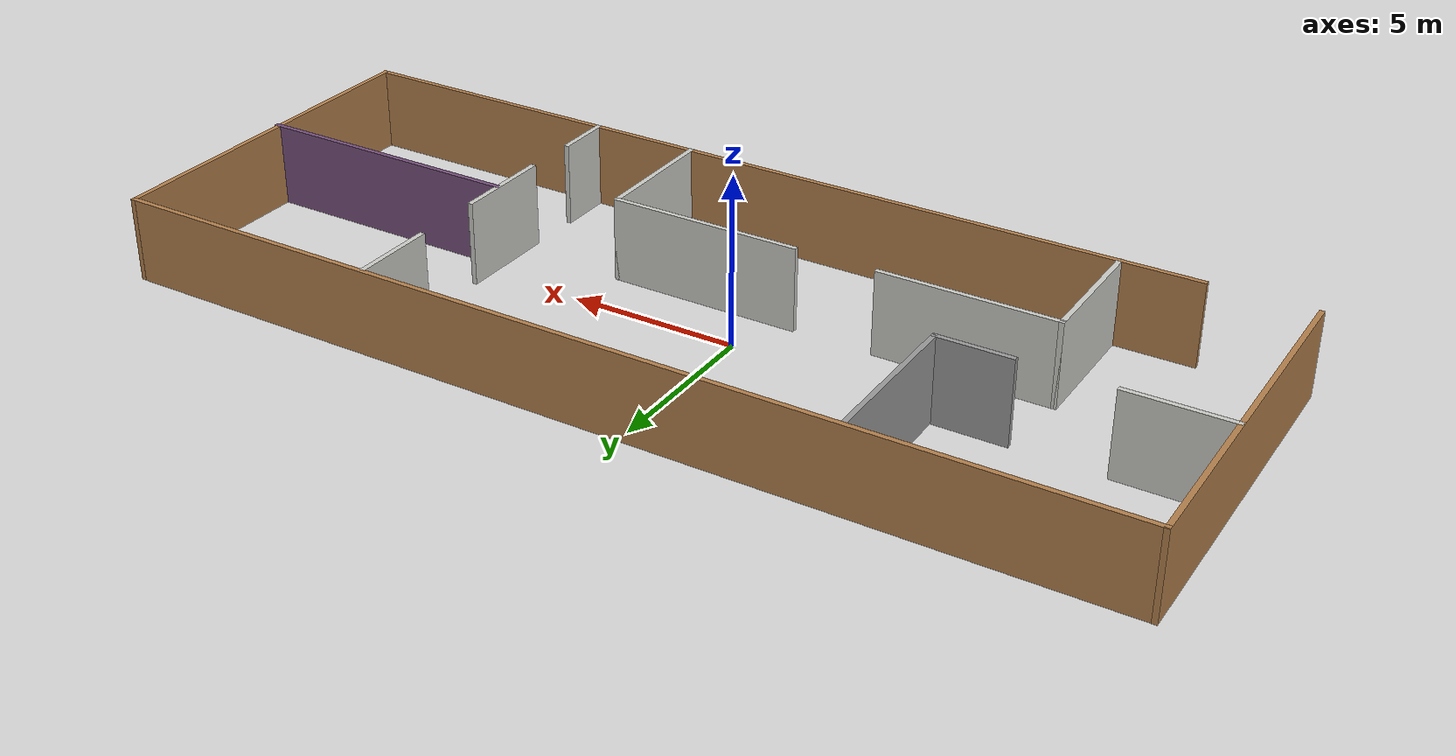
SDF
<?xml version='1.0'?>
<sdf version='1.6'>
  <model name='myflat'>
    <pose frame=''>1.14765 -0.045355 0 0 -0 0</pose>
    <link name='Wall_0'>
      <collision name='Wall_0_Collision'>
        <geometry>
          <box>
            <size>11 0.15 2.5</size>
          </box>
        </geometry>
        <pose frame=''>0 0 1.25 0 -0 0</pose>
      </collision>
      <visual name='Wall_0_Visual'>
        <pose frame=''>0 0 1.25 0 -0 0</pose>
        <geometry>
          <box>
            <size>11 0.15 2.5</size>
          </box>
        </geometry>
        <material>
          <script>
            <uri>file://media/materials/scripts/gazebo.material</uri>
            <name>Gazebo/Wood</name>
          </script>
          <ambient>1 1 1 1</ambient>
        </material>
        <meta>
          <layer>0</layer>
        </meta>
      </visual>
      <pose frame=''>-14.9561 0.009602 0 0 -0 1.5708</pose>
    </link>
    <link name='Wall_1'>
      <collision name='Wall_1_Collision'>
        <geometry>
          <box>
            <size>30 0.15 2.5</size>
          </box>
        </geometry>
        <pose frame=''>0 0 1.25 0 -0 0</pose>
      </collision>
      <visual name='Wall_1_Visual'>
        <pose frame=''>0 0 1.25 0 -0 0</pose>
        <geometry>
          <box>
            <size>30 0.15 2.5</size>
          </box>
        </geometry>
        <material>
          <script>
            <uri>file://media/materials/scripts/gazebo.material</uri>
            <name>Gazebo/Wood</name>
          </script>
          <ambient>1 1 1 1</ambient>
        </material>
        <meta>
          <layer>0</layer>
        </meta>
      </visual>
      <pose frame=''>-0.031081 5.4346 0 0 -0 0</pose>
    </link>
    <link name='Wall_12'>
      <collision name='Wall_12_Collision'>
        <geometry>
          <box>
            <size>3 0.15 2.5</size>
          </box>
        </geometry>
        <pose frame=''>0 0 1.25 0 -0 0</pose>
      </collision>
      <visual name='Wall_12_Visual'>
        <pose frame=''>0 0 1.25 0 -0 0</pose>
        <geometry>
          <box>
            <size>3 0.15 2.5</size>
          </box>
        </geometry>
        <material>
          <script>
            <uri>file://media/materials/scripts/gazebo.material</uri>
            <name>Gazebo/CeilingTiled</name>
          </script>
          <ambient>0.458824 0.313726 0.482353 1</ambient>
        </material>
        <meta>
          <layer>0</layer>
        </meta>
      </visual>
      <pose frame=''>6.80982 -0.687656 0 0 -0 -1.5708</pose>
    </link>
    <link name='Wall_14'>
      <collision name='Wall_14_Collision'>
        <geometry>
          <box>
            <size>1.75 0.15 2.5</size>
          </box>
        </geometry>
        <pose frame=''>0 0 1.25 0 -0 0</pose>
      </collision>
      <visual name='Wall_14_Visual'>
        <pose frame=''>0 0 1.25 0 -0 0</pose>
        <geometry>
          <box>
            <size>1.75 0.15 2.5</size>
          </box>
        </geometry>
        <material>
          <script>
            <uri>file://media/materials/scripts/gazebo.material</uri>
            <name>Gazebo/CeilingTiled</name>
          </script>
          <ambient>0.458824 0.313726 0.482353 1</ambient>
        </material>
        <meta>
          <layer>0</layer>
        </meta>
      </visual>
      <pose frame=''>6.76356 -4.61939 0 0 -0 -1.5708</pose>
    </link>
    <link name='Wall_16'>
      <collision name='Wall_16_Collision'>
        <geometry>
          <box>
            <size>8.25 0.15 2.5</size>
          </box>
        </geometry>
        <pose frame=''>0 0 1.25 0 -0 0</pose>
      </collision>
      <visual name='Wall_16_Visual'>
        <pose frame=''>0 0 1.25 0 -0 0</pose>
        <geometry>
          <box>
            <size>8.25 0.15 2.5</size>
          </box>
        </geometry>
        <material>
          <script>
            <uri>file://media/materials/scripts/gazebo.material</uri>
            <name>Gazebo/Grey</name>
          </script>
          <ambient>0.458824 0.313726 0.482353 1</ambient>
        </material>
        <meta>
          <layer>0</layer>
        </meta>
      </visual>
      <pose frame=''>10.9061 -0.488579 0 0 -0 0</pose>
    </link>
    <link name='Wall_18'>
      <collision name='Wall_18_Collision'>
        <geometry>
          <box>
            <size>4 0.15 2.5</size>
          </box>
        </geometry>
        <pose frame=''>0 0 1.25 0 -0 0</pose>
      </collision>
      <visual name='Wall_18_Visual'>
        <pose frame=''>0 0 1.25 0 -0 0</pose>
        <geometry>
          <box>
            <size>4 0.15 2.5</size>
          </box>
        </geometry>
        <material>
          <script>
            <uri>file://media/materials/scripts/gazebo.material</uri>
            <name>Gazebo/CeilingTiled</name>
          </script>
          <ambient>1 1 1 1</ambient>
        </material>
        <meta>
          <layer>0</layer>
        </meta>
      </visual>
      <pose frame=''>-9.66455 -3.5096 0 0 -0 1.5708</pose>
    </link>
    <link name='Wall_19'>
      <collision name='Wall_19_Collision'>
        <geometry>
          <box>
            <size>5.25 0.15 2.5</size>
          </box>
        </geometry>
        <pose frame=''>0 0 1.25 0 -0 0</pose>
      </collision>
      <visual name='Wall_19_Visual'>
        <pose frame=''>0 0 1.25 0 -0 0</pose>
        <geometry>
          <box>
            <size>5.25 0.15 2.5</size>
          </box>
        </geometry>
        <material>
          <script>
            <uri>file://media/materials/scripts/gazebo.material</uri>
            <name>Gazebo/CeilingTiled</name>
          </script>
          <ambient>1 1 1 1</ambient>
        </material>
        <meta>
          <layer>0</layer>
        </meta>
      </visual>
      <pose frame=''>-7.11455 -1.5846 0 0 -0 0</pose>
    </link>
    <link name='Wall_2'>
      <collision name='Wall_2_Collision'>
        <geometry>
          <box>
            <size>11 0.15 2.5</size>
          </box>
        </geometry>
        <pose frame=''>0 0 1.25 0 -0 0</pose>
      </collision>
      <visual name='Wall_2_Visual'>
        <pose frame=''>0 0 1.25 0 -0 0</pose>
        <geometry>
          <box>
            <size>11 0.15 2.5</size>
          </box>
        </geometry>
        <material>
          <script>
            <uri>file://media/materials/scripts/gazebo.material</uri>
            <name>Gazebo/Wood</name>
          </script>
          <ambient>1 1 1 1</ambient>
        </material>
        <meta>
          <layer>0</layer>
        </meta>
      </visual>
      <pose frame=''>14.8939 0.009602 0 0 -0 -1.5708</pose>
    </link>
    <link name='Wall_22'>
      <collision name='Wall_22_Collision'>
        <geometry>
          <box>
            <size>5.75 0.15 2.5</size>
          </box>
        </geometry>
        <pose frame=''>0 0 1.25 0 -0 0</pose>
      </collision>
      <visual name='Wall_22_Visual'>
        <pose frame=''>0 0 1.25 0 -0 0</pose>
        <geometry>
          <box>
            <size>5.75 0.15 2.5</size>
          </box>
        </geometry>
        <material>
          <script>
            <uri>file://media/materials/scripts/gazebo.material</uri>
            <name>Gazebo/CeilingTiled</name>
          </script>
          <ambient>1 1 1 1</ambient>
        </material>
        <meta>
          <layer>0</layer>
        </meta>
      </visual>
      <pose frame=''>0.721827 -1.58023 0 0 -0 0</pose>
    </link>
    <link name='Wall_23'>
      <collision name='Wall_23_Collision'>
        <geometry>
          <box>
            <size>4 0.15 2.5</size>
          </box>
        </geometry>
        <pose frame=''>0 0 1.25 0 -0 0</pose>
      </collision>
      <visual name='Wall_23_Visual'>
        <pose frame=''>0 0 1.25 0 -0 0</pose>
        <geometry>
          <box>
            <size>4 0.15 2.5</size>
          </box>
        </geometry>
        <material>
          <script>
            <uri>file://media/materials/scripts/gazebo.material</uri>
            <name>Gazebo/CeilingTiled</name>
          </script>
          <ambient>1 1 1 1</ambient>
        </material>
        <meta>
          <layer>0</layer>
        </meta>
      </visual>
      <pose frame=''>3.52183 -3.50523 0 0 -0 -1.5708</pose>
    </link>
    <link name='Wall_25'>
      <collision name='Wall_25_Collision'>
        <geometry>
          <box>
            <size>3 0.15 2.5</size>
          </box>
        </geometry>
        <pose frame=''>0 0 1.25 0 -0 0</pose>
      </collision>
      <visual name='Wall_25_Visual'>
        <pose frame=''>0 0 1.25 0 -0 0</pose>
        <geometry>
          <box>
            <size>3 0.15 2.5</size>
          </box>
        </geometry>
        <material>
          <script>
            <uri>file://media/materials/scripts/gazebo.material</uri>
            <name>Gazebo/CeilingTiled</name>
          </script>
          <ambient>1 1 1 1</ambient>
        </material>
        <meta>
          <layer>0</layer>
        </meta>
      </visual>
      <pose frame=''>-13.5011 0.683444 0 0 -0 0</pose>
    </link>
    <link name='Wall_27'>
      <collision name='Wall_27_Collision'>
        <geometry>
          <box>
            <size>2.25 0.15 2.5</size>
          </box>
        </geometry>
        <pose frame=''>0 0 1.25 0 -0 0</pose>
      </collision>
      <visual name='Wall_27_Visual'>
        <pose frame=''>0 0 1.25 0 -0 0</pose>
        <geometry>
          <box>
            <size>2.25 0.15 2.5</size>
          </box>
        </geometry>
        <material>
          <script>
            <uri>file://media/materials/scripts/gazebo.material</uri>
            <name>Gazebo/Grey</name>
          </script>
          <ambient>1 1 1 1</ambient>
        </material>
        <meta>
          <layer>0</layer>
        </meta>
      </visual>
      <pose frame=''>-8.30865 0.683444 0 0 -0 0</pose>
    </link>
    <link name='Wall_28'>
      <collision name='Wall_28_Collision'>
        <geometry>
          <box>
            <size>4.75 0.15 2.5</size>
          </box>
        </geometry>
        <pose frame=''>0 0 1.25 0 -0 0</pose>
      </collision>
      <visual name='Wall_28_Visual'>
        <pose frame=''>0 0 1.25 0 -0 0</pose>
        <geometry>
          <box>
            <size>4.75 0.15 2.5</size>
          </box>
        </geometry>
        <material>
          <script>
            <uri>file://media/materials/scripts/gazebo.material</uri>
            <name>Gazebo/Grey</name>
          </script>
          <ambient>1 1 1 1</ambient>
        </material>
        <meta>
          <layer>0</layer>
        </meta>
      </visual>
      <pose frame=''>-7.25865 2.98344 0 0 -0 1.5708</pose>
    </link>
    <link name='Wall_3'>
      <collision name='Wall_3_Collision'>
        <geometry>
          <box>
            <size>27 0.15 2.5</size>
          </box>
        </geometry>
        <pose frame=''>0 0 1.25 0 -0 0</pose>
      </collision>
      <visual name='Wall_3_Visual'>
        <pose frame=''>0 0 1.25 0 -0 0</pose>
        <geometry>
          <box>
            <size>27 0.15 2.5</size>
          </box>
        </geometry>
        <material>
          <script>
            <uri>file://media/materials/scripts/gazebo.material</uri>
            <name>Gazebo/Wood</name>
          </script>
          <ambient>1 1 1 1</ambient>
        </material>
        <meta>
          <layer>0</layer>
        </meta>
      </visual>
      <pose frame=''>1.46892 -5.4154 0 0 -0 3.14159</pose>
    </link>
    <link name='Wall_9'>
      <collision name='Wall_9_Collision'>
        <geometry>
          <box>
            <size>2.5 0.15 2.5</size>
          </box>
        </geometry>
        <pose frame=''>0 0 1.25 0 -0 0</pose>
      </collision>
      <visual name='Wall_9_Visual'>
        <pose frame=''>0 0 1.25 0 -0 0</pose>
        <geometry>
          <box>
            <size>2.5 0.15 2.5</size>
          </box>
        </geometry>
        <material>
          <script>
            <uri>file://media/materials/scripts/gazebo.material</uri>
            <name>Gazebo/CeilingTiled</name>
          </script>
          <ambient>0.458824 0.313726 0.482353 1</ambient>
        </material>
        <meta>
          <layer>0</layer>
        </meta>
      </visual>
      <pose frame=''>6.80982 4.1422 0 0 -0 -1.5708</pose>
    </link>
    <static>1</static>
  </model>
</sdf>
